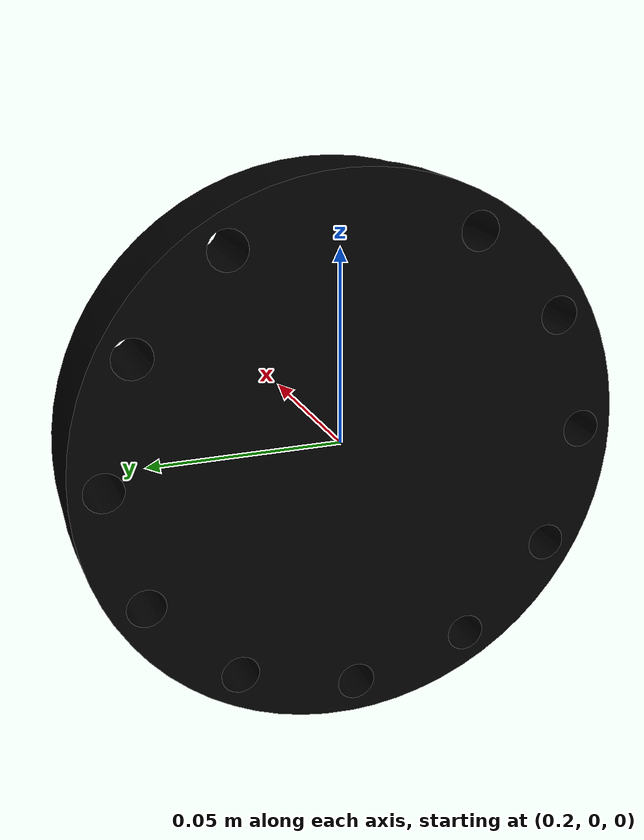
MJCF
<mujoco model="link_6">
  <default>
    <default class="visual">
      <geom group="2" type="mesh" contype="0" conaffinity="0"/>
    </default>
    <default class="collision">
      <geom group="3" type="mesh"/>
    </default>
  </default>
  <asset>
    <material name="RAL9005.001" specular="0.5" shininess="0.25" rgba="0.002509 0.002509 0.002509 1.000000"/>
    <mesh file="link_6.obj"/>
  </asset>
  <worldbody>
    <body name="link_6">
      <geom material="RAL9005.001" mesh="link_6" class="visual"/>
      <geom mesh="link_6" class="collision"/>
    </body>
  </worldbody>
</mujoco>
